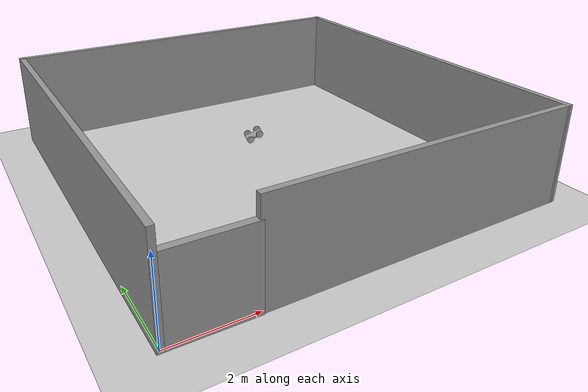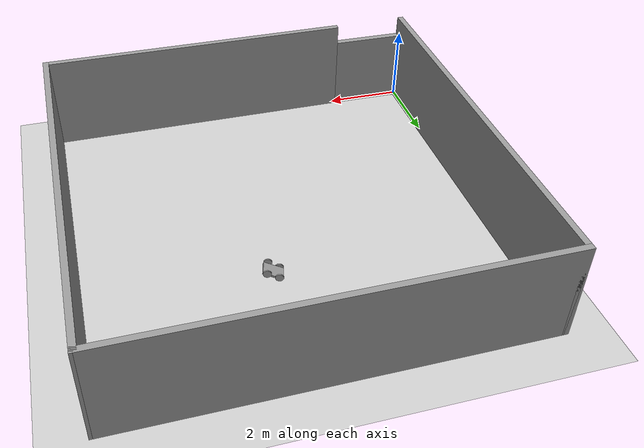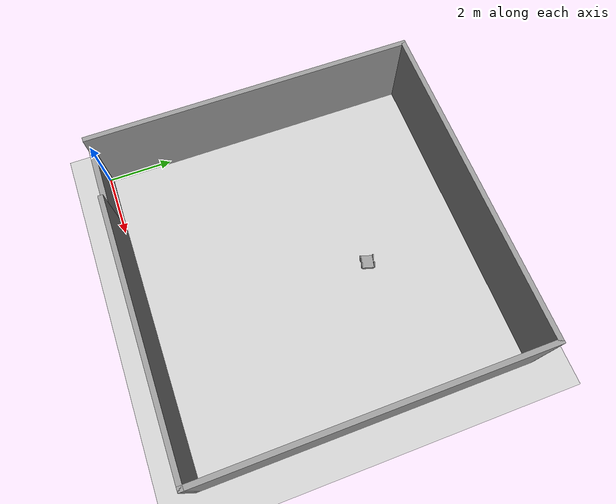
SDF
<sdf version="1.6">
 <world name="default">
  <model name="ground_plane">
   <static>1</static>
   <link name="link">
    <collision name="collision">
     <geometry><plane><normal>0 0 1</normal><size>100 100</size></plane></geometry>
     <surface>
      <contact><collide_bitmask>65535</collide_bitmask></contact>
      <friction><ode><mu>100</mu><mu2>50</mu2></ode></friction>
     </surface>
    </collision>
    <visual name="visual">
     <cast_shadows>0</cast_shadows>
     <geometry><plane><normal>0 0 1</normal><size>100 100</size></plane></geometry>
     <material>
      <script><uri>file://media/materials/scripts/gazebo.material</uri><name>Gazebo/Grey</name></script>
     </material>
    </visual>
   </link>
  </model>
  <model name="building_final">
   <pose>5.00504 5 0 0 -0 0</pose>
   <link name="Door_0">
    <collision name="Door_0_Collision">
     <geometry><box><size>2 0.17 2</size></box></geometry>
     <pose>0 0 1 0 -0 0</pose>
    </collision>
    <visual name="Door_0_Visual">
     <pose>0 0 1 0 -0 0</pose>
     <geometry><box><size>2 0.17 2</size></box></geometry>
     <material>
      <script><uri>file://media/materials/scripts/gazebo.material</uri><name>Gazebo/Grey</name></script>
     </material>
    </visual>
    <pose>-4.00504 -5 0 0 -0 3.12819</pose>
   </link>
   <link name="Wall_0">
    <collision name="Wall_0_Collision">
     <geometry><box><size>10.15 0.15 2.5</size></box></geometry>
     <pose>0 0 1.25 0 -0 0</pose>
    </collision>
    <visual name="Wall_0_Visual">
     <pose>0 0 1.25 0 -0 0</pose>
     <geometry><box><size>10.15 0.15 2.5</size></box></geometry>
     <material>
      <script><uri>file://media/materials/scripts/gazebo.material</uri><name>Gazebo/Grey</name></script>
      <ambient>1 1 1 1</ambient>
     </material>
     <meta><layer>0</layer></meta>
    </visual>
    <pose>-5.00504 0 0 0 -0 1.5708</pose>
   </link>
   <link name="Wall_1">
    <collision name="Wall_1_Collision">
     <geometry><box><size>10.15 0.15 2.5</size></box></geometry>
     <pose>0 0 1.25 0 -0 0</pose>
    </collision>
    <visual name="Wall_1_Visual">
     <pose>0 0 1.25 0 -0 0</pose>
     <geometry><box><size>10.15 0.15 2.5</size></box></geometry>
     <material>
      <script><uri>file://media/materials/scripts/gazebo.material</uri><name>Gazebo/Grey</name></script>
      <ambient>1 1 1 1</ambient>
     </material>
     <meta><layer>0</layer></meta>
    </visual>
    <pose>-0.005037 5 0 0 -0 0</pose>
   </link>
   <link name="Wall_2">
    <collision name="Wall_2_Collision">
     <geometry><box><size>10.15 0.15 2.5</size></box></geometry>
     <pose>0 0 1.25 0 -0 0</pose>
    </collision>
    <visual name="Wall_2_Visual">
     <pose>0 0 1.25 0 -0 0</pose>
     <geometry><box><size>10.15 0.15 2.5</size></box></geometry>
     <material>
      <script><uri>file://media/materials/scripts/gazebo.material</uri><name>Gazebo/Grey</name></script>
      <ambient>1 1 1 1</ambient>
     </material>
     <meta><layer>0</layer></meta>
    </visual>
    <pose>4.99996 0 0 0 0 -1.5698</pose>
   </link>
   <link name="Wall_3">
    <collision name="Wall_3_Collision">
     <geometry><box><size>8.16 0.15 2.5</size></box></geometry>
     <pose>0 0 1.25 0 -0 0</pose>
    </collision>
    <visual name="Wall_3_Visual">
     <pose>0 0 1.25 0 -0 0</pose>
     <geometry><box><size>8.16 0.15 2.5</size></box></geometry>
     <material>
      <script><uri>file://media/materials/scripts/gazebo.material</uri><name>Gazebo/Grey</name></script>
      <ambient>1 1 1 1</ambient>
     </material>
     <meta><layer>0</layer></meta>
    </visual>
    <pose>0.999963 -5 0 0 -0 3.14159</pose>
   </link>
   <static>1</static>
  </model>
  <model name="robotrevision">
   <link name="link_0">
    <pose>-0.15 -0.190014 -0.02401 1.5707 -0 0</pose>
    <inertial>
     <mass>1</mass>
     <inertia><ixx>0.145833</ixx><ixy>0</ixy><ixz>0</ixz><iyy>0.145833</iyy><iyz>0</iyz><izz>0.125</izz></inertia>
    </inertial>
    <visual name="visual">
     <geometry><cylinder><radius>0.1</radius><length>0.03</length></cylinder></geometry>
     <material>
      <lighting>1</lighting>
      <script><uri>file://media/materials/scripts/gazebo.material</uri><name>Gazebo/Grey</name></script>
      <shader type="pixel"><normal_map>__default__</normal_map></shader>
      <ambient>0.3 0.3 0.3 1</ambient>
      <diffuse>0.7 0.7 0.7 1</diffuse>
      <specular>0.01 0.01 0.01 1</specular>
      <emissive>0 0 0 1</emissive>
     </material>
    </visual>
    <collision name="collision">
     <geometry><cylinder><radius>0.1</radius><length>0.03</length></cylinder></geometry>
     <surface>
      <friction>
       <ode><mu>1</mu><mu2>1</mu2><fdir1>0 0 0</fdir1><slip1>0</slip1><slip2>0</slip2></ode>
       <torsional>
        <coefficient>1</coefficient>
        <patch_radius>0</patch_radius>
        <surface_radius>0</surface_radius>
        <use_patch_radius>1</use_patch_radius>
        <ode><slip>0</slip></ode>
       </torsional>
      </friction>
      <bounce><restitution_coefficient>0</restitution_coefficient><threshold>1e+06</threshold></bounce>
      <contact>
       <collide_without_contact>0</collide_without_contact>
       <collide_without_contact_bitmask>1</collide_without_contact_bitmask>
       <collide_bitmask>1</collide_bitmask>
       <ode>
        <soft_cfm>0</soft_cfm>
        <soft_erp>0.2</soft_erp>
        <kp>1e+13</kp>
        <kd>1</kd>
        <max_vel>0.01</max_vel>
        <min_depth>0</min_depth>
       </ode>
       <bullet>
        <split_impulse>1</split_impulse>
        <split_impulse_penetration_threshold>-0.01</split_impulse_penetration_threshold>
        <soft_cfm>0</soft_cfm>
        <soft_erp>0.2</soft_erp>
        <kp>1e+13</kp>
        <kd>1</kd>
       </bullet>
      </contact>
     </surface>
    </collision>
   </link>
   <link name="link_0_clone">
    <pose>0.15 -0.19001 0.016002 1.5707 -0 0</pose>
    <inertial>
     <mass>1</mass>
     <inertia><ixx>0.145833</ixx><ixy>0</ixy><ixz>0</ixz><iyy>0.145833</iyy><iyz>0</iyz><izz>0.125</izz></inertia>
    </inertial>
    <visual name="visual">
     <geometry><cylinder><radius>0.1</radius><length>0.03</length></cylinder></geometry>
     <material>
      <lighting>1</lighting>
      <script><uri>file://media/materials/scripts/gazebo.material</uri><name>Gazebo/Grey</name></script>
      <shader type="pixel"><normal_map>__default__</normal_map></shader>
      <ambient>0.3 0.3 0.3 1</ambient>
      <diffuse>0.7 0.7 0.7 1</diffuse>
      <specular>0.01 0.01 0.01 1</specular>
      <emissive>0 0 0 1</emissive>
     </material>
    </visual>
    <collision name="collision">
     <geometry><cylinder><radius>0.1</radius><length>0.03</length></cylinder></geometry>
     <surface>
      <friction>
       <ode><mu>1</mu><mu2>1</mu2><fdir1>0 0 0</fdir1><slip1>0</slip1><slip2>0</slip2></ode>
       <torsional>
        <coefficient>1</coefficient>
        <patch_radius>0</patch_radius>
        <surface_radius>0</surface_radius>
        <use_patch_radius>1</use_patch_radius>
        <ode><slip>0</slip></ode>
       </torsional>
      </friction>
      <bounce><restitution_coefficient>0</restitution_coefficient><threshold>1e+06</threshold></bounce>
      <contact>
       <collide_without_contact>0</collide_without_contact>
       <collide_without_contact_bitmask>1</collide_without_contact_bitmask>
       <collide_bitmask>1</collide_bitmask>
       <ode>
        <soft_cfm>0</soft_cfm>
        <soft_erp>0.2</soft_erp>
        <kp>1e+13</kp>
        <kd>1</kd>
        <max_vel>0.01</max_vel>
        <min_depth>0</min_depth>
       </ode>
       <bullet>
        <split_impulse>1</split_impulse>
        <split_impulse_penetration_threshold>-0.01</split_impulse_penetration_threshold>
        <soft_cfm>0</soft_cfm>
        <soft_erp>0.2</soft_erp>
        <kp>1e+13</kp>
        <kd>1</kd>
       </bullet>
      </contact>
     </surface>
    </collision>
   </link>
   <link name="link_0_clone_0">
    <pose>0.15 0.19001 0.016002 1.5707 -0 0</pose>
    <inertial>
     <mass>1</mass>
     <inertia><ixx>0.145833</ixx><ixy>0</ixy><ixz>0</ixz><iyy>0.145833</iyy><iyz>0</iyz><izz>0.125</izz></inertia>
    </inertial>
    <visual name="visual">
     <geometry><cylinder><radius>0.1</radius><length>0.03</length></cylinder></geometry>
     <material>
      <lighting>1</lighting>
      <script><uri>file://media/materials/scripts/gazebo.material</uri><name>Gazebo/Grey</name></script>
      <shader type="pixel"><normal_map>__default__</normal_map></shader>
      <ambient>0.3 0.3 0.3 1</ambient>
      <diffuse>0.7 0.7 0.7 1</diffuse>
      <specular>0.01 0.01 0.01 1</specular>
      <emissive>0 0 0 1</emissive>
     </material>
    </visual>
    <collision name="collision">
     <geometry><cylinder><radius>0.1</radius><length>0.03</length></cylinder></geometry>
     <surface>
      <friction>
       <ode><mu>1</mu><mu2>1</mu2><fdir1>0 0 0</fdir1><slip1>0</slip1><slip2>0</slip2></ode>
       <torsional>
        <coefficient>1</coefficient>
        <patch_radius>0</patch_radius>
        <surface_radius>0</surface_radius>
        <use_patch_radius>1</use_patch_radius>
        <ode><slip>0</slip></ode>
       </torsional>
      </friction>
      <bounce><restitution_coefficient>0</restitution_coefficient><threshold>1e+06</threshold></bounce>
      <contact>
       <collide_without_contact>0</collide_without_contact>
       <collide_without_contact_bitmask>1</collide_without_contact_bitmask>
       <collide_bitmask>1</collide_bitmask>
       <ode>
        <soft_cfm>0</soft_cfm>
        <soft_erp>0.2</soft_erp>
        <kp>1e+13</kp>
        <kd>1</kd>
        <max_vel>0.01</max_vel>
        <min_depth>0</min_depth>
       </ode>
       <bullet>
        <split_impulse>1</split_impulse>
        <split_impulse_penetration_threshold>-0.01</split_impulse_penetration_threshold>
        <soft_cfm>0</soft_cfm>
        <soft_erp>0.2</soft_erp>
        <kp>1e+13</kp>
        <kd>1</kd>
       </bullet>
      </contact>
     </surface>
    </collision>
   </link>
   <link name="link_0_clone_1">
    <pose>-0.15 0.19001 0.016002 1.5707 -0 0</pose>
    <inertial>
     <mass>1</mass>
     <inertia><ixx>0.145833</ixx><ixy>0</ixy><ixz>0</ixz><iyy>0.145833</iyy><iyz>0</iyz><izz>0.125</izz></inertia>
    </inertial>
    <visual name="visual">
     <geometry><cylinder><radius>0.1</radius><length>0.03</length></cylinder></geometry>
     <material>
      <lighting>1</lighting>
      <script><uri>file://media/materials/scripts/gazebo.material</uri><name>Gazebo/Grey</name></script>
      <shader type="pixel"><normal_map>__default__</normal_map></shader>
      <ambient>0.3 0.3 0.3 1</ambient>
      <diffuse>0.7 0.7 0.7 1</diffuse>
      <specular>0.01 0.01 0.01 1</specular>
      <emissive>0 0 0 1</emissive>
     </material>
    </visual>
    <collision name="collision">
     <geometry><cylinder><radius>0.1</radius><length>0.03</length></cylinder></geometry>
     <surface>
      <friction>
       <ode><mu>1</mu><mu2>1</mu2><fdir1>0 0 0</fdir1><slip1>0</slip1><slip2>0</slip2></ode>
       <torsional>
        <coefficient>1</coefficient>
        <patch_radius>0</patch_radius>
        <surface_radius>0</surface_radius>
        <use_patch_radius>1</use_patch_radius>
        <ode><slip>0</slip></ode>
       </torsional>
      </friction>
      <bounce><restitution_coefficient>0</restitution_coefficient><threshold>1e+06</threshold></bounce>
      <contact>
       <collide_without_contact>0</collide_without_contact>
       <collide_without_contact_bitmask>1</collide_without_contact_bitmask>
       <collide_bitmask>1</collide_bitmask>
       <ode>
        <soft_cfm>0</soft_cfm>
        <soft_erp>0.2</soft_erp>
        <kp>1e+13</kp>
        <kd>1</kd>
        <max_vel>0.01</max_vel>
        <min_depth>0</min_depth>
       </ode>
       <bullet>
        <split_impulse>1</split_impulse>
        <split_impulse_penetration_threshold>-0.01</split_impulse_penetration_threshold>
        <soft_cfm>0</soft_cfm>
        <soft_erp>0.2</soft_erp>
        <kp>1e+13</kp>
        <kd>1</kd>
       </bullet>
      </contact>
     </surface>
    </collision>
   </link>
   <link name="link_1">
    <pose>0 -0 -0.023997 0 -0 0</pose>
    <inertial>
     <mass>1</mass>
     <inertia>
      <ixx>0.166667</ixx>
      <ixy>0</ixy>
      <ixz>0</ixz>
      <iyy>0.166667</iyy>
      <iyz>0</iyz>
      <izz>0.166667</izz>
     </inertia>
    </inertial>
    <visual name="visual">
     <geometry><box><size>0.5 0.35 0.05</size></box></geometry>
     <material>
      <lighting>1</lighting>
      <script><uri>file://media/materials/scripts/gazebo.material</uri><name>Gazebo/Grey</name></script>
      <shader type="pixel"><normal_map>__default__</normal_map></shader>
      <ambient>0.3 0.3 0.3 1</ambient>
      <diffuse>0.7 0.7 0.7 1</diffuse>
      <specular>0.01 0.01 0.01 1</specular>
      <emissive>0 0 0 1</emissive>
     </material>
    </visual>
    <collision name="collision">
     <geometry><box><size>0.5 0.35 0.05</size></box></geometry>
     <surface>
      <friction>
       <ode><mu>1</mu><mu2>1</mu2><fdir1>0 0 0</fdir1><slip1>0</slip1><slip2>0</slip2></ode>
       <torsional>
        <coefficient>1</coefficient>
        <patch_radius>0</patch_radius>
        <surface_radius>0</surface_radius>
        <use_patch_radius>1</use_patch_radius>
        <ode><slip>0</slip></ode>
       </torsional>
      </friction>
      <bounce><restitution_coefficient>0</restitution_coefficient><threshold>1e+06</threshold></bounce>
      <contact>
       <collide_without_contact>0</collide_without_contact>
       <collide_without_contact_bitmask>1</collide_without_contact_bitmask>
       <collide_bitmask>1</collide_bitmask>
       <ode>
        <soft_cfm>0</soft_cfm>
        <soft_erp>0.2</soft_erp>
        <kp>1e+13</kp>
        <kd>1</kd>
        <max_vel>0.01</max_vel>
        <min_depth>0</min_depth>
       </ode>
       <bullet>
        <split_impulse>1</split_impulse>
        <split_impulse_penetration_threshold>-0.01</split_impulse_penetration_threshold>
        <soft_cfm>0</soft_cfm>
        <soft_erp>0.2</soft_erp>
        <kp>1e+13</kp>
        <kd>1</kd>
       </bullet>
      </contact>
     </surface>
    </collision>
   </link>
   <joint name="link_1_JOINT_4" type="revolute">
    <parent>link_1</parent>
    <child>link_0_clone_0</child>
    <axis>
     <xyz>0 0 1</xyz>
     <use_parent_model_frame>0</use_parent_model_frame>
     <limit>
      <lower>-1.79769e+308</lower>
      <upper>1.79769e+308</upper>
      <effort>-1</effort>
      <velocity>-1</velocity>
     </limit>
     <dynamics>
      <spring_reference>0</spring_reference>
      <spring_stiffness>0</spring_stiffness>
      <damping>0</damping>
     </dynamics>
    </axis>
    <physics>
     <ode><limit><cfm>0</cfm><erp>0.2</erp></limit><suspension><cfm>0</cfm><erp>0.2</erp></suspension></ode>
    </physics>
   </joint>
   <joint name="link_1_JOINT_5" type="revolute">
    <parent>link_1</parent>
    <child>link_0</child>
    <axis>
     <xyz>0 0 1</xyz>
     <use_parent_model_frame>0</use_parent_model_frame>
     <limit>
      <lower>-1.79769e+308</lower>
      <upper>1.79769e+308</upper>
      <effort>-1</effort>
      <velocity>-1</velocity>
     </limit>
     <dynamics>
      <spring_reference>0</spring_reference>
      <spring_stiffness>0</spring_stiffness>
      <damping>0</damping>
     </dynamics>
    </axis>
    <physics>
     <ode><limit><cfm>0</cfm><erp>0.2</erp></limit><suspension><cfm>0</cfm><erp>0.2</erp></suspension></ode>
    </physics>
   </joint>
   <joint name="link_1_JOINT_6" type="revolute">
    <parent>link_1</parent>
    <child>link_0_clone</child>
    <axis>
     <xyz>0 0 1</xyz>
     <use_parent_model_frame>0</use_parent_model_frame>
     <limit>
      <lower>-1.79769e+308</lower>
      <upper>1.79769e+308</upper>
      <effort>-1</effort>
      <velocity>-1</velocity>
     </limit>
     <dynamics>
      <spring_reference>0</spring_reference>
      <spring_stiffness>0</spring_stiffness>
      <damping>0</damping>
     </dynamics>
    </axis>
    <physics>
     <ode><limit><cfm>0</cfm><erp>0.2</erp></limit><suspension><cfm>0</cfm><erp>0.2</erp></suspension></ode>
    </physics>
   </joint>
   <joint name="link_1_JOINT_7" type="revolute">
    <parent>link_1</parent>
    <child>link_0_clone_1</child>
    <axis>
     <xyz>0 0 1</xyz>
     <use_parent_model_frame>0</use_parent_model_frame>
     <limit>
      <lower>-1.79769e+308</lower>
      <upper>1.79769e+308</upper>
      <effort>-1</effort>
      <velocity>-1</velocity>
     </limit>
     <dynamics>
      <spring_reference>0</spring_reference>
      <spring_stiffness>0</spring_stiffness>
      <damping>0</damping>
     </dynamics>
    </axis>
    <physics>
     <ode><limit><cfm>0</cfm><erp>0.2</erp></limit><suspension><cfm>0</cfm><erp>0.2</erp></suspension></ode>
    </physics>
   </joint>
   <static>0</static>
   <pose>5.58177 6.7395 0.177863 -1.2e-05 -0.379449 -0.28271</pose>
  </model>
 </world>
</sdf>
